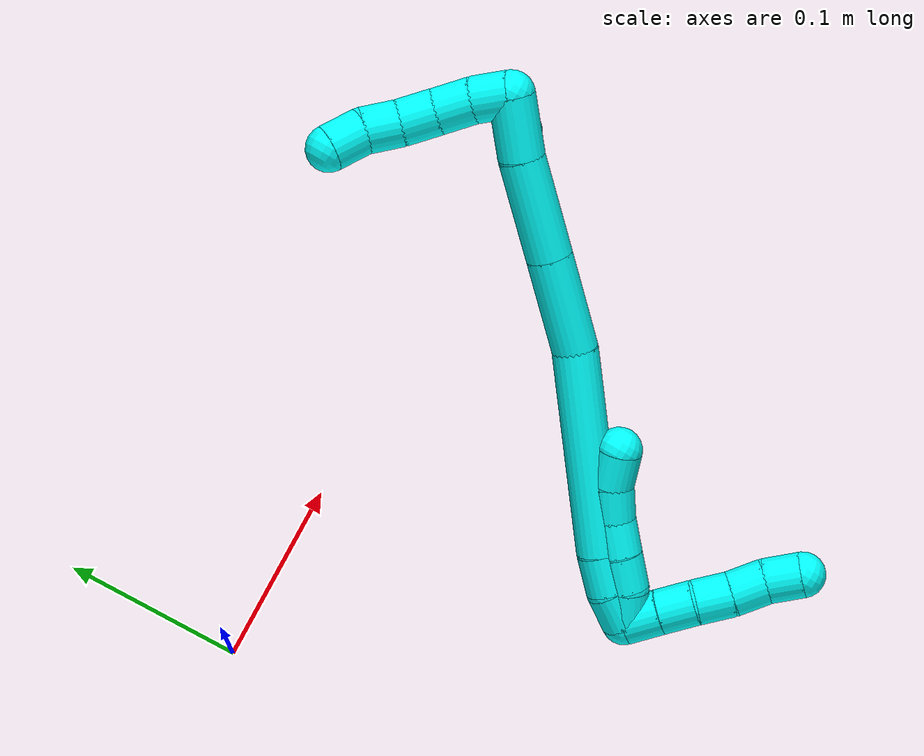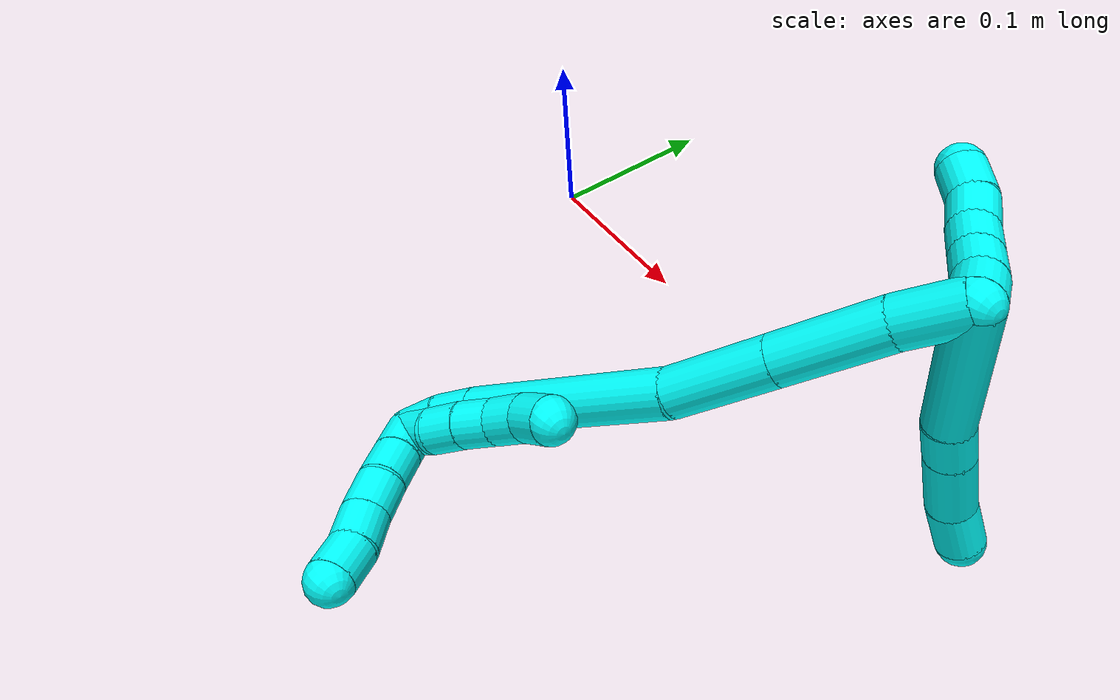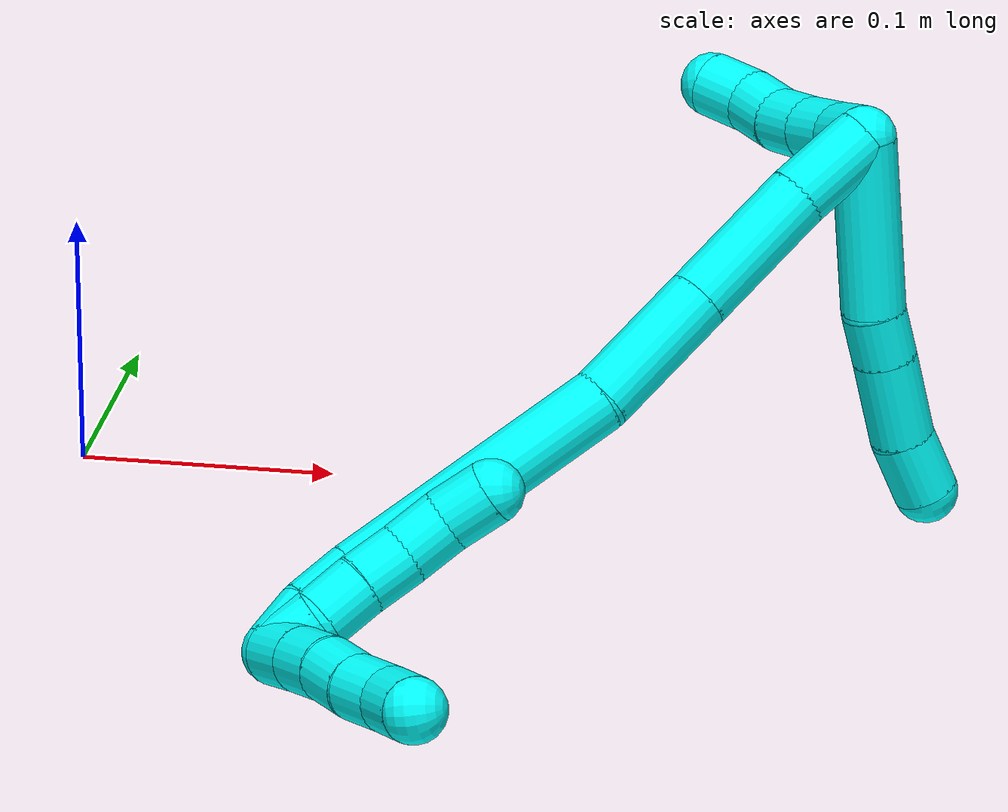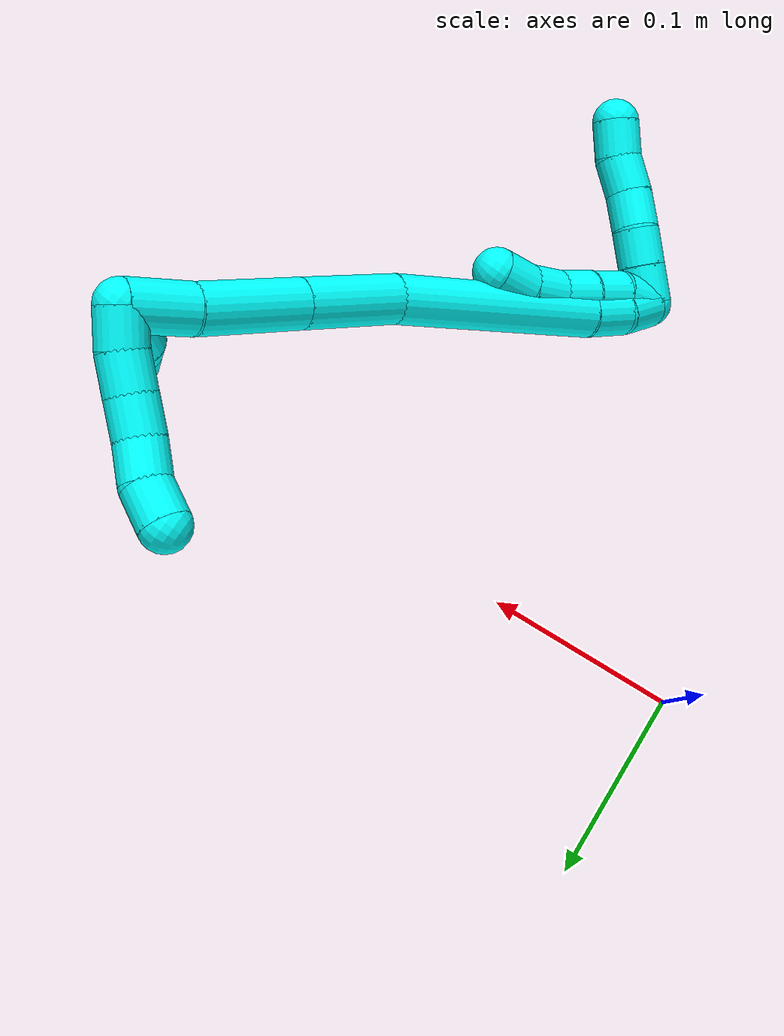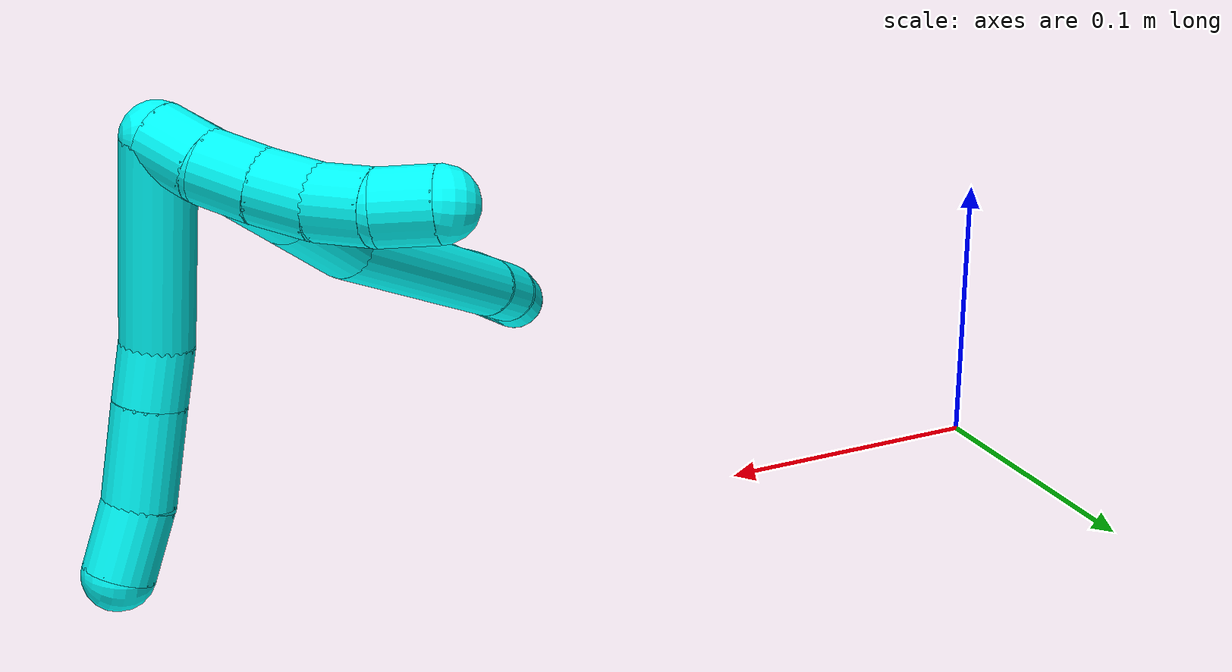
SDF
<sdf version="1.7">
 <world name="default">
  <model name="3">
   <static>0</static>
   <link name="3">
    <collision name="collision-cylinder-e_1_2_8">
     <pose>0.034491 -0.002476 -0.00389 2.57477 1.4379 2.49909</pose>
     <geometry><cylinder><radius>0.0125</radius><length>0.069595</length></cylinder></geometry>
     <surface>
      <friction><ode><mu>1.16</mu><mu2>1.16</mu2><slip1>0</slip1><slip2>0</slip2></ode></friction>
      <contact><ode><kp>1e+06</kp><kd>1</kd><max_vel>0</max_vel><min_depth>0.001</min_depth></ode></contact>
     </surface>
    </collision>
    <visual name="visual-cylinder-e_1_2_8">
     <pose>0.034491 -0.002476 -0.00389 2.57477 1.4379 2.49909</pose>
     <geometry><cylinder><radius>0.0125</radius><length>0.069595</length></cylinder></geometry>
     <material><ambient>0.003922 1 0.996078 1</ambient></material>
    </visual>
    <collision name="collision-cylinder-e_2_8_9">
     <pose>0.079144 -0.004456 -0.007507 -1.06845 1.51518 -1.02035</pose>
     <geometry><cylinder><radius>0.0125</radius><length>0.020356</length></cylinder></geometry>
     <surface>
      <friction><ode><mu>1.16</mu><mu2>1.16</mu2><slip1>0</slip1><slip2>0</slip2></ode></friction>
      <contact><ode><kp>1e+06</kp><kd>1</kd><max_vel>0</max_vel><min_depth>0.001</min_depth></ode></contact>
     </surface>
    </collision>
    <visual name="visual-cylinder-e_2_8_9">
     <pose>0.079144 -0.004456 -0.007507 -1.06845 1.51518 -1.02035</pose>
     <geometry><cylinder><radius>0.0125</radius><length>0.020356</length></cylinder></geometry>
     <material><ambient>0.003922 1 0.996078 1</ambient></material>
    </visual>
    <collision name="collision-cylinder-e_3_9_10">
     <pose>0.106634 -0.003153 -0.007024 -1.31496 1.52267 -1.26867</pose>
     <geometry><cylinder><radius>0.0125</radius><length>0.034696</length></cylinder></geometry>
     <surface>
      <friction><ode><mu>1.16</mu><mu2>1.16</mu2><slip1>0</slip1><slip2>0</slip2></ode></friction>
      <contact><ode><kp>1e+06</kp><kd>1</kd><max_vel>0</max_vel><min_depth>0.001</min_depth></ode></contact>
     </surface>
    </collision>
    <visual name="visual-cylinder-e_3_9_10">
     <pose>0.106634 -0.003153 -0.007024 -1.31496 1.52267 -1.26867</pose>
     <geometry><cylinder><radius>0.0125</radius><length>0.034696</length></cylinder></geometry>
     <material><ambient>0.003922 1 0.996078 1</ambient></material>
    </visual>
    <collision name="collision-cylinder-e_4_10_6">
     <pose>0.136384 -0.001292 -0.004516 -0.43012 1.37014 -0.353242</pose>
     <geometry><cylinder><radius>0.0125</radius><length>0.025353</length></cylinder></geometry>
     <surface>
      <friction><ode><mu>1.16</mu><mu2>1.16</mu2><slip1>0</slip1><slip2>0</slip2></ode></friction>
      <contact><ode><kp>1e+06</kp><kd>1</kd><max_vel>0</max_vel><min_depth>0.001</min_depth></ode></contact>
     </surface>
    </collision>
    <visual name="visual-cylinder-e_4_10_6">
     <pose>0.136384 -0.001292 -0.004516 -0.43012 1.37014 -0.353242</pose>
     <geometry><cylinder><radius>0.0125</radius><length>0.025353</length></cylinder></geometry>
     <material><ambient>0.003922 1 0.996078 1</ambient></material>
    </visual>
    <collision name="collision-cylinder-e_1_2_11">
     <pose>0.002101 0.007735 -0.00598 -2.22898 0.211638 -0.426206</pose>
     <geometry><cylinder><radius>0.0125</radius><length>0.02</length></cylinder></geometry>
     <surface>
      <friction><ode><mu>1.16</mu><mu2>1.16</mu2><slip1>0</slip1><slip2>0</slip2></ode></friction>
      <contact><ode><kp>1e+06</kp><kd>1</kd><max_vel>0</max_vel><min_depth>0.001</min_depth></ode></contact>
     </surface>
    </collision>
    <visual name="visual-cylinder-e_1_2_11">
     <pose>0.002101 0.007735 -0.00598 -2.22898 0.211638 -0.426206</pose>
     <geometry><cylinder><radius>0.0125</radius><length>0.02</length></cylinder></geometry>
     <material><ambient>0.003922 1 0.996078 1</ambient></material>
    </visual>
    <collision name="collision-cylinder-e_2_11_12">
     <pose>0.005212 0.022315 -0.019179 -2.38265 0.101286 -0.252839</pose>
     <geometry><cylinder><radius>0.0125</radius><length>0.02</length></cylinder></geometry>
     <surface>
      <friction><ode><mu>1.16</mu><mu2>1.16</mu2><slip1>0</slip1><slip2>0</slip2></ode></friction>
      <contact><ode><kp>1e+06</kp><kd>1</kd><max_vel>0</max_vel><min_depth>0.001</min_depth></ode></contact>
     </surface>
    </collision>
    <visual name="visual-cylinder-e_2_11_12">
     <pose>0.005212 0.022315 -0.019179 -2.38265 0.101286 -0.252839</pose>
     <geometry><cylinder><radius>0.0125</radius><length>0.02</length></cylinder></geometry>
     <material><ambient>0.003922 1 0.996078 1</ambient></material>
    </visual>
    <collision name="collision-cylinder-e_3_12_13">
     <pose>0.006553 0.036007 -0.03368 -2.38705 0.032986 -0.083203</pose>
     <geometry><cylinder><radius>0.0125</radius><length>0.02</length></cylinder></geometry>
     <surface>
      <friction><ode><mu>1.16</mu><mu2>1.16</mu2><slip1>0</slip1><slip2>0</slip2></ode></friction>
      <contact><ode><kp>1e+06</kp><kd>1</kd><max_vel>0</max_vel><min_depth>0.001</min_depth></ode></contact>
     </surface>
    </collision>
    <visual name="visual-cylinder-e_3_12_13">
     <pose>0.006553 0.036007 -0.03368 -2.38705 0.032986 -0.083203</pose>
     <geometry><cylinder><radius>0.0125</radius><length>0.02</length></cylinder></geometry>
     <material><ambient>0.003922 1 0.996078 1</ambient></material>
    </visual>
    <collision name="collision-cylinder-e_4_13_14">
     <pose>0.005402 0.050112 -0.047678 -2.31747 -0.148672 0.337533</pose>
     <geometry><cylinder><radius>0.0125</radius><length>0.02</length></cylinder></geometry>
     <surface>
      <friction><ode><mu>1.16</mu><mu2>1.16</mu2><slip1>0</slip1><slip2>0</slip2></ode></friction>
      <contact><ode><kp>1e+06</kp><kd>1</kd><max_vel>0</max_vel><min_depth>0.001</min_depth></ode></contact>
     </surface>
    </collision>
    <visual name="visual-cylinder-e_4_13_14">
     <pose>0.005402 0.050112 -0.047678 -2.31747 -0.148672 0.337533</pose>
     <geometry><cylinder><radius>0.0125</radius><length>0.02</length></cylinder></geometry>
     <material><ambient>0.003922 1 0.996078 1</ambient></material>
    </visual>
    <collision name="collision-cylinder-e_5_14_5">
     <pose>0.00153 0.062334 -0.062741 -2.60502 -0.241379 0.83094</pose>
     <geometry><cylinder><radius>0.0125</radius><length>0.02</length></cylinder></geometry>
     <surface>
      <friction><ode><mu>1.16</mu><mu2>1.16</mu2><slip1>0</slip1><slip2>0</slip2></ode></friction>
      <contact><ode><kp>1e+06</kp><kd>1</kd><max_vel>0</max_vel><min_depth>0.001</min_depth></ode></contact>
     </surface>
    </collision>
    <visual name="visual-cylinder-e_5_14_5">
     <pose>0.00153 0.062334 -0.062741 -2.60502 -0.241379 0.83094</pose>
     <geometry><cylinder><radius>0.0125</radius><length>0.02</length></cylinder></geometry>
     <material><ambient>0.003922 1 0.996078 1</ambient></material>
    </visual>
    <collision name="collision-cylinder-e_1_2_15">
     <pose>0.006371 -0.009939 -0.012403 2.46602 0.381236 1.00469</pose>
     <geometry><cylinder><radius>0.0125</radius><length>0.034247</length></cylinder></geometry>
     <surface>
      <friction><ode><mu>1.16</mu><mu2>1.16</mu2><slip1>0</slip1><slip2>0</slip2></ode></friction>
      <contact><ode><kp>1e+06</kp><kd>1</kd><max_vel>0</max_vel><min_depth>0.001</min_depth></ode></contact>
     </surface>
    </collision>
    <visual name="visual-cylinder-e_1_2_15">
     <pose>0.006371 -0.009939 -0.012403 2.46602 0.381236 1.00469</pose>
     <geometry><cylinder><radius>0.0125</radius><length>0.034247</length></cylinder></geometry>
     <material><ambient>0.003922 1 0.996078 1</ambient></material>
    </visual>
    <collision name="collision-cylinder-e_2_15_16">
     <pose>0.023689 -0.03821 -0.042802 2.34697 0.402833 0.905723</pose>
     <geometry><cylinder><radius>0.0125</radius><length>0.055849</length></cylinder></geometry>
     <surface>
      <friction><ode><mu>1.16</mu><mu2>1.16</mu2><slip1>0</slip1><slip2>0</slip2></ode></friction>
      <contact><ode><kp>1e+06</kp><kd>1</kd><max_vel>0</max_vel><min_depth>0.001</min_depth></ode></contact>
     </surface>
    </collision>
    <visual name="visual-cylinder-e_2_15_16">
     <pose>0.023689 -0.03821 -0.042802 2.34697 0.402833 0.905723</pose>
     <geometry><cylinder><radius>0.0125</radius><length>0.055849</length></cylinder></geometry>
     <material><ambient>0.003922 1 0.996078 1</ambient></material>
    </visual>
    <collision name="collision-cylinder-e_3_16_17">
     <pose>0.04521 -0.074183 -0.078203 2.34943 0.403298 0.909371</pose>
     <geometry><cylinder><radius>0.0125</radius><length>0.053884</length></cylinder></geometry>
     <surface>
      <friction><ode><mu>1.16</mu><mu2>1.16</mu2><slip1>0</slip1><slip2>0</slip2></ode></friction>
      <contact><ode><kp>1e+06</kp><kd>1</kd><max_vel>0</max_vel><min_depth>0.001</min_depth></ode></contact>
     </surface>
    </collision>
    <visual name="visual-cylinder-e_3_16_17">
     <pose>0.04521 -0.074183 -0.078203 2.34943 0.403298 0.909371</pose>
     <geometry><cylinder><radius>0.0125</radius><length>0.053884</length></cylinder></geometry>
     <material><ambient>0.003922 1 0.996078 1</ambient></material>
    </visual>
    <collision name="collision-cylinder-e_4_17_18">
     <pose>0.071509 -0.124378 -0.139246 2.50068 0.281175 0.806112</pose>
     <geometry><cylinder><radius>0.0125</radius><length>0.11334</length></cylinder></geometry>
     <surface>
      <friction><ode><mu>1.16</mu><mu2>1.16</mu2><slip1>0</slip1><slip2>0</slip2></ode></friction>
      <contact><ode><kp>1e+06</kp><kd>1</kd><max_vel>0</max_vel><min_depth>0.001</min_depth></ode></contact>
     </surface>
    </collision>
    <visual name="visual-cylinder-e_4_17_18">
     <pose>0.071509 -0.124378 -0.139246 2.50068 0.281175 0.806112</pose>
     <geometry><cylinder><radius>0.0125</radius><length>0.11334</length></cylinder></geometry>
     <material><ambient>0.003922 1 0.996078 1</ambient></material>
    </visual>
    <collision name="collision-cylinder-e_5_18_19">
     <pose>0.090447 -0.164274 -0.190584 2.37984 0.293361 0.706926</pose>
     <geometry><cylinder><radius>0.0125</radius><length>0.022225</length></cylinder></geometry>
     <surface>
      <friction><ode><mu>1.16</mu><mu2>1.16</mu2><slip1>0</slip1><slip2>0</slip2></ode></friction>
      <contact><ode><kp>1e+06</kp><kd>1</kd><max_vel>0</max_vel><min_depth>0.001</min_depth></ode></contact>
     </surface>
    </collision>
    <visual name="visual-cylinder-e_5_18_19">
     <pose>0.090447 -0.164274 -0.190584 2.37984 0.293361 0.706926</pose>
     <geometry><cylinder><radius>0.0125</radius><length>0.022225</length></cylinder></geometry>
     <material><ambient>0.003922 1 0.996078 1</ambient></material>
    </visual>
    <collision name="collision-cylinder-e_6_19_1">
     <pose>0.09742 -0.179444 -0.203684 2.17477 0.376453 0.696155</pose>
     <geometry><cylinder><radius>0.0125</radius><length>0.020455</length></cylinder></geometry>
     <surface>
      <friction><ode><mu>1.16</mu><mu2>1.16</mu2><slip1>0</slip1><slip2>0</slip2></ode></friction>
      <contact><ode><kp>1e+06</kp><kd>1</kd><max_vel>0</max_vel><min_depth>0.001</min_depth></ode></contact>
     </surface>
    </collision>
    <visual name="visual-cylinder-e_6_19_1">
     <pose>0.09742 -0.179444 -0.203684 2.17477 0.376453 0.696155</pose>
     <geometry><cylinder><radius>0.0125</radius><length>0.020455</length></cylinder></geometry>
     <material><ambient>0.003922 1 0.996078 1</ambient></material>
    </visual>
    <collision name="collision-cylinder-e_1_1_20">
     <pose>0.099797 -0.194117 -0.201927 0.762959 -0.138735 -0.055726</pose>
     <geometry><cylinder><radius>0.0125</radius><length>0.02</length></cylinder></geometry>
     <surface>
      <friction><ode><mu>1.16</mu><mu2>1.16</mu2><slip1>0</slip1><slip2>0</slip2></ode></friction>
      <contact><ode><kp>1e+06</kp><kd>1</kd><max_vel>0</max_vel><min_depth>0.001</min_depth></ode></contact>
     </surface>
    </collision>
    <visual name="visual-cylinder-e_1_1_20">
     <pose>0.099797 -0.194117 -0.201927 0.762959 -0.138735 -0.055726</pose>
     <geometry><cylinder><radius>0.0125</radius><length>0.02</length></cylinder></geometry>
     <material><ambient>0.003922 1 0.996078 1</ambient></material>
    </visual>
    <collision name="collision-cylinder-e_2_20_21">
     <pose>0.097329 -0.207925 -0.187674 0.776145 -0.108697 -0.044472</pose>
     <geometry><cylinder><radius>0.0125</radius><length>0.02</length></cylinder></geometry>
     <surface>
      <friction><ode><mu>1.16</mu><mu2>1.16</mu2><slip1>0</slip1><slip2>0</slip2></ode></friction>
      <contact><ode><kp>1e+06</kp><kd>1</kd><max_vel>0</max_vel><min_depth>0.001</min_depth></ode></contact>
     </surface>
    </collision>
    <visual name="visual-cylinder-e_2_20_21">
     <pose>0.097329 -0.207925 -0.187674 0.776145 -0.108697 -0.044472</pose>
     <geometry><cylinder><radius>0.0125</radius><length>0.02</length></cylinder></geometry>
     <material><ambient>0.003922 1 0.996078 1</ambient></material>
    </visual>
    <collision name="collision-cylinder-e_3_21_22">
     <pose>0.096574 -0.222163 -0.173725 0.814994 0.032954 0.014226</pose>
     <geometry><cylinder><radius>0.0125</radius><length>0.02</length></cylinder></geometry>
     <surface>
      <friction><ode><mu>1.16</mu><mu2>1.16</mu2><slip1>0</slip1><slip2>0</slip2></ode></friction>
      <contact><ode><kp>1e+06</kp><kd>1</kd><max_vel>0</max_vel><min_depth>0.001</min_depth></ode></contact>
     </surface>
    </collision>
    <visual name="visual-cylinder-e_3_21_22">
     <pose>0.096574 -0.222163 -0.173725 0.814994 0.032954 0.014226</pose>
     <geometry><cylinder><radius>0.0125</radius><length>0.02</length></cylinder></geometry>
     <material><ambient>0.003922 1 0.996078 1</ambient></material>
    </visual>
    <collision name="collision-cylinder-e_4_22_23">
     <pose>0.096822 -0.235758 -0.159122 0.684396 -0.008176 -0.002913</pose>
     <geometry><cylinder><radius>0.0125</radius><length>0.02</length></cylinder></geometry>
     <surface>
      <friction><ode><mu>1.16</mu><mu2>1.16</mu2><slip1>0</slip1><slip2>0</slip2></ode></friction>
      <contact><ode><kp>1e+06</kp><kd>1</kd><max_vel>0</max_vel><min_depth>0.001</min_depth></ode></contact>
     </surface>
    </collision>
    <visual name="visual-cylinder-e_4_22_23">
     <pose>0.096822 -0.235758 -0.159122 0.684396 -0.008176 -0.002913</pose>
     <geometry><cylinder><radius>0.0125</radius><length>0.02</length></cylinder></geometry>
     <material><ambient>0.003922 1 0.996078 1</ambient></material>
    </visual>
    <collision name="collision-cylinder-e_5_23_4">
     <pose>0.095378 -0.249618 -0.144947 0.864762 -0.136592 -0.063115</pose>
     <geometry><cylinder><radius>0.0125</radius><length>0.02</length></cylinder></geometry>
     <surface>
      <friction><ode><mu>1.16</mu><mu2>1.16</mu2><slip1>0</slip1><slip2>0</slip2></ode></friction>
      <contact><ode><kp>1e+06</kp><kd>1</kd><max_vel>0</max_vel><min_depth>0.001</min_depth></ode></contact>
     </surface>
    </collision>
    <visual name="visual-cylinder-e_5_23_4">
     <pose>0.095378 -0.249618 -0.144947 0.864762 -0.136592 -0.063115</pose>
     <geometry><cylinder><radius>0.0125</radius><length>0.02</length></cylinder></geometry>
     <material><ambient>0.003922 1 0.996078 1</ambient></material>
    </visual>
    <collision name="collision-cylinder-e_1_1_24">
     <pose>0.097365 -0.183156 -0.200809 -0.461565 -0.391466 0.093108</pose>
     <geometry><cylinder><radius>0.0125</radius><length>0.02</length></cylinder></geometry>
     <surface>
      <friction><ode><mu>1.16</mu><mu2>1.16</mu2><slip1>0</slip1><slip2>0</slip2></ode></friction>
      <contact><ode><kp>1e+06</kp><kd>1</kd><max_vel>0</max_vel><min_depth>0.001</min_depth></ode></contact>
     </surface>
    </collision>
    <visual name="visual-cylinder-e_1_1_24">
     <pose>0.097365 -0.183156 -0.200809 -0.461565 -0.391466 0.093108</pose>
     <geometry><cylinder><radius>0.0125</radius><length>0.02</length></cylinder></geometry>
     <material><ambient>0.003922 1 0.996078 1</ambient></material>
    </visual>
    <collision name="collision-cylinder-e_2_24_25">
     <pose>0.090374 -0.172786 -0.185405 -0.7202 -0.323138 0.122583</pose>
     <geometry><cylinder><radius>0.0125</radius><length>0.02</length></cylinder></geometry>
     <surface>
      <friction><ode><mu>1.16</mu><mu2>1.16</mu2><slip1>0</slip1><slip2>0</slip2></ode></friction>
      <contact><ode><kp>1e+06</kp><kd>1</kd><max_vel>0</max_vel><min_depth>0.001</min_depth></ode></contact>
     </surface>
    </collision>
    <visual name="visual-cylinder-e_2_24_25">
     <pose>0.090374 -0.172786 -0.185405 -0.7202 -0.323138 0.122583</pose>
     <geometry><cylinder><radius>0.0125</radius><length>0.02</length></cylinder></geometry>
     <material><ambient>0.003922 1 0.996078 1</ambient></material>
    </visual>
    <collision name="collision-cylinder-e_3_25_26">
     <pose>0.08471 -0.160239 -0.170914 -0.707141 -0.251525 0.093258</pose>
     <geometry><cylinder><radius>0.0125</radius><length>0.02</length></cylinder></geometry>
     <surface>
      <friction><ode><mu>1.16</mu><mu2>1.16</mu2><slip1>0</slip1><slip2>0</slip2></ode></friction>
      <contact><ode><kp>1e+06</kp><kd>1</kd><max_vel>0</max_vel><min_depth>0.001</min_depth></ode></contact>
     </surface>
    </collision>
    <visual name="visual-cylinder-e_3_25_26">
     <pose>0.08471 -0.160239 -0.170914 -0.707141 -0.251525 0.093258</pose>
     <geometry><cylinder><radius>0.0125</radius><length>0.02</length></cylinder></geometry>
     <material><ambient>0.003922 1 0.996078 1</ambient></material>
    </visual>
    <collision name="collision-cylinder-e_4_26_27">
     <pose>0.078587 -0.148903 -0.155718 -0.572105 -0.37191 0.110551</pose>
     <geometry><cylinder><radius>0.0125</radius><length>0.02</length></cylinder></geometry>
     <surface>
      <friction><ode><mu>1.16</mu><mu2>1.16</mu2><slip1>0</slip1><slip2>0</slip2></ode></friction>
      <contact><ode><kp>1e+06</kp><kd>1</kd><max_vel>0</max_vel><min_depth>0.001</min_depth></ode></contact>
     </surface>
    </collision>
    <visual name="visual-cylinder-e_4_26_27">
     <pose>0.078587 -0.148903 -0.155718 -0.572105 -0.37191 0.110551</pose>
     <geometry><cylinder><radius>0.0125</radius><length>0.02</length></cylinder></geometry>
     <material><ambient>0.003922 1 0.996078 1</ambient></material>
    </visual>
    <collision name="collision-cylinder-e_5_27_3">
     <pose>0.071141 -0.141275 -0.139009 -0.283291 -0.391059 0.056472</pose>
     <geometry><cylinder><radius>0.0125</radius><length>0.02</length></cylinder></geometry>
     <surface>
      <friction><ode><mu>1.16</mu><mu2>1.16</mu2><slip1>0</slip1><slip2>0</slip2></ode></friction>
      <contact><ode><kp>1e+06</kp><kd>1</kd><max_vel>0</max_vel><min_depth>0.001</min_depth></ode></contact>
     </surface>
    </collision>
    <visual name="visual-cylinder-e_5_27_3">
     <pose>0.071141 -0.141275 -0.139009 -0.283291 -0.391059 0.056472</pose>
     <geometry><cylinder><radius>0.0125</radius><length>0.02</length></cylinder></geometry>
     <material><ambient>0.003922 1 0.996078 1</ambient></material>
    </visual>
    <collision name="collision-sphere-3">
     <pose>0.067329 -0.138691 -0.130132 0 -0 0</pose>
     <geometry><sphere><radius>0.0125</radius></sphere></geometry>
     <surface>
      <friction><ode><mu>1.16</mu><mu2>1.16</mu2><slip1>0</slip1><slip2>0</slip2></ode></friction>
      <contact><ode><kp>1e+06</kp><kd>1</kd><max_vel>0</max_vel><min_depth>0.001</min_depth></ode></contact>
     </surface>
    </collision>
    <visual name="visual-sphere-3">
     <pose>0.067329 -0.138691 -0.130132 0 -0 0</pose>
     <geometry><sphere><radius>0.0125</radius></sphere></geometry>
     <material><ambient>0.003922 1 0.996078 1</ambient></material>
    </visual>
    <collision name="collision-sphere-27">
     <pose>0.074953 -0.143859 -0.147886 0 -0 0</pose>
     <geometry><sphere><radius>0.0125</radius></sphere></geometry>
     <surface>
      <friction><ode><mu>1.16</mu><mu2>1.16</mu2><slip1>0</slip1><slip2>0</slip2></ode></friction>
      <contact><ode><kp>1e+06</kp><kd>1</kd><max_vel>0</max_vel><min_depth>0.001</min_depth></ode></contact>
     </surface>
    </collision>
    <visual name="visual-sphere-27">
     <pose>0.074953 -0.143859 -0.147886 0 -0 0</pose>
     <geometry><sphere><radius>0.0125</radius></sphere></geometry>
     <material><ambient>0.003922 1 0.996078 1</ambient></material>
    </visual>
    <collision name="collision-sphere-26">
     <pose>0.082221 -0.153947 -0.163551 0 -0 0</pose>
     <geometry><sphere><radius>0.0125</radius></sphere></geometry>
     <surface>
      <friction><ode><mu>1.16</mu><mu2>1.16</mu2><slip1>0</slip1><slip2>0</slip2></ode></friction>
      <contact><ode><kp>1e+06</kp><kd>1</kd><max_vel>0</max_vel><min_depth>0.001</min_depth></ode></contact>
     </surface>
    </collision>
    <visual name="visual-sphere-26">
     <pose>0.082221 -0.153947 -0.163551 0 -0 0</pose>
     <geometry><sphere><radius>0.0125</radius></sphere></geometry>
     <material><ambient>0.003922 1 0.996078 1</ambient></material>
    </visual>
    <collision name="collision-sphere-25">
     <pose>0.087198 -0.166532 -0.178277 0 -0 0</pose>
     <geometry><sphere><radius>0.0125</radius></sphere></geometry>
     <surface>
      <friction><ode><mu>1.16</mu><mu2>1.16</mu2><slip1>0</slip1><slip2>0</slip2></ode></friction>
      <contact><ode><kp>1e+06</kp><kd>1</kd><max_vel>0</max_vel><min_depth>0.001</min_depth></ode></contact>
     </surface>
    </collision>
    <visual name="visual-sphere-25">
     <pose>0.087198 -0.166532 -0.178277 0 -0 0</pose>
     <geometry><sphere><radius>0.0125</radius></sphere></geometry>
     <material><ambient>0.003922 1 0.996078 1</ambient></material>
    </visual>
    <collision name="collision-sphere-24">
     <pose>0.093549 -0.17904 -0.192533 0 -0 0</pose>
     <geometry><sphere><radius>0.0125</radius></sphere></geometry>
     <surface>
      <friction><ode><mu>1.16</mu><mu2>1.16</mu2><slip1>0</slip1><slip2>0</slip2></ode></friction>
      <contact><ode><kp>1e+06</kp><kd>1</kd><max_vel>0</max_vel><min_depth>0.001</min_depth></ode></contact>
     </surface>
    </collision>
    <visual name="visual-sphere-24">
     <pose>0.093549 -0.17904 -0.192533 0 -0 0</pose>
     <geometry><sphere><radius>0.0125</radius></sphere></geometry>
     <material><ambient>0.003922 1 0.996078 1</ambient></material>
    </visual>
    <collision name="collision-sphere-4">
     <pose>0.094017 -0.257157 -0.138519 0 -0 0</pose>
     <geometry><sphere><radius>0.0125</radius></sphere></geometry>
     <surface>
      <friction><ode><mu>1.16</mu><mu2>1.16</mu2><slip1>0</slip1><slip2>0</slip2></ode></friction>
      <contact><ode><kp>1e+06</kp><kd>1</kd><max_vel>0</max_vel><min_depth>0.001</min_depth></ode></contact>
     </surface>
    </collision>
    <visual name="visual-sphere-4">
     <pose>0.094017 -0.257157 -0.138519 0 -0 0</pose>
     <geometry><sphere><radius>0.0125</radius></sphere></geometry>
     <material><ambient>0.003922 1 0.996078 1</ambient></material>
    </visual>
    <collision name="collision-sphere-23">
     <pose>0.09674 -0.24208 -0.151375 0 -0 0</pose>
     <geometry><sphere><radius>0.0125</radius></sphere></geometry>
     <surface>
      <friction><ode><mu>1.16</mu><mu2>1.16</mu2><slip1>0</slip1><slip2>0</slip2></ode></friction>
      <contact><ode><kp>1e+06</kp><kd>1</kd><max_vel>0</max_vel><min_depth>0.001</min_depth></ode></contact>
     </surface>
    </collision>
    <visual name="visual-sphere-23">
     <pose>0.09674 -0.24208 -0.151375 0 -0 0</pose>
     <geometry><sphere><radius>0.0125</radius></sphere></geometry>
     <material><ambient>0.003922 1 0.996078 1</ambient></material>
    </visual>
    <collision name="collision-sphere-22">
     <pose>0.096904 -0.229436 -0.16687 0 -0 0</pose>
     <geometry><sphere><radius>0.0125</radius></sphere></geometry>
     <surface>
      <friction><ode><mu>1.16</mu><mu2>1.16</mu2><slip1>0</slip1><slip2>0</slip2></ode></friction>
      <contact><ode><kp>1e+06</kp><kd>1</kd><max_vel>0</max_vel><min_depth>0.001</min_depth></ode></contact>
     </surface>
    </collision>
    <visual name="visual-sphere-22">
     <pose>0.096904 -0.229436 -0.16687 0 -0 0</pose>
     <geometry><sphere><radius>0.0125</radius></sphere></geometry>
     <material><ambient>0.003922 1 0.996078 1</ambient></material>
    </visual>
    <collision name="collision-sphere-21">
     <pose>0.096245 -0.214889 -0.18058 0 -0 0</pose>
     <geometry><sphere><radius>0.0125</radius></sphere></geometry>
     <surface>
      <friction><ode><mu>1.16</mu><mu2>1.16</mu2><slip1>0</slip1><slip2>0</slip2></ode></friction>
      <contact><ode><kp>1e+06</kp><kd>1</kd><max_vel>0</max_vel><min_depth>0.001</min_depth></ode></contact>
     </surface>
    </collision>
    <visual name="visual-sphere-21">
     <pose>0.096245 -0.214889 -0.18058 0 -0 0</pose>
     <geometry><sphere><radius>0.0125</radius></sphere></geometry>
     <material><ambient>0.003922 1 0.996078 1</ambient></material>
    </visual>
    <collision name="collision-sphere-20">
     <pose>0.098414 -0.200961 -0.194768 0 -0 0</pose>
     <geometry><sphere><radius>0.0125</radius></sphere></geometry>
     <surface>
      <friction><ode><mu>1.16</mu><mu2>1.16</mu2><slip1>0</slip1><slip2>0</slip2></ode></friction>
      <contact><ode><kp>1e+06</kp><kd>1</kd><max_vel>0</max_vel><min_depth>0.001</min_depth></ode></contact>
     </surface>
    </collision>
    <visual name="visual-sphere-20">
     <pose>0.098414 -0.200961 -0.194768 0 -0 0</pose>
     <geometry><sphere><radius>0.0125</radius></sphere></geometry>
     <material><ambient>0.003922 1 0.996078 1</ambient></material>
    </visual>
    <collision name="collision-sphere-11">
     <pose>0.004201 0.015469 -0.011961 0 -0 0</pose>
     <geometry><sphere><radius>0.0125</radius></sphere></geometry>
     <surface>
      <friction><ode><mu>1.16</mu><mu2>1.16</mu2><slip1>0</slip1><slip2>0</slip2></ode></friction>
      <contact><ode><kp>1e+06</kp><kd>1</kd><max_vel>0</max_vel><min_depth>0.001</min_depth></ode></contact>
     </surface>
    </collision>
    <visual name="visual-sphere-11">
     <pose>0.004201 0.015469 -0.011961 0 -0 0</pose>
     <geometry><sphere><radius>0.0125</radius></sphere></geometry>
     <material><ambient>0.003922 1 0.996078 1</ambient></material>
    </visual>
    <collision name="collision-sphere-6">
     <pose>0.148806 -0.000238 -0.002219 0 -0 0</pose>
     <geometry><sphere><radius>0.0125</radius></sphere></geometry>
     <surface>
      <friction><ode><mu>1.16</mu><mu2>1.16</mu2><slip1>0</slip1><slip2>0</slip2></ode></friction>
      <contact><ode><kp>1e+06</kp><kd>1</kd><max_vel>0</max_vel><min_depth>0.001</min_depth></ode></contact>
     </surface>
    </collision>
    <visual name="visual-sphere-6">
     <pose>0.148806 -0.000238 -0.002219 0 -0 0</pose>
     <geometry><sphere><radius>0.0125</radius></sphere></geometry>
     <material><ambient>0.003922 1 0.996078 1</ambient></material>
    </visual>
    <collision name="collision-sphere-10">
     <pose>0.123961 -0.002345 -0.006812 0 -0 0</pose>
     <geometry><sphere><radius>0.0125</radius></sphere></geometry>
     <surface>
      <friction><ode><mu>1.16</mu><mu2>1.16</mu2><slip1>0</slip1><slip2>0</slip2></ode></friction>
      <contact><ode><kp>1e+06</kp><kd>1</kd><max_vel>0</max_vel><min_depth>0.001</min_depth></ode></contact>
     </surface>
    </collision>
    <visual name="visual-sphere-10">
     <pose>0.123961 -0.002345 -0.006812 0 -0 0</pose>
     <geometry><sphere><radius>0.0125</radius></sphere></geometry>
     <material><ambient>0.003922 1 0.996078 1</ambient></material>
    </visual>
    <collision name="collision-sphere-9">
     <pose>0.089306 -0.00396 -0.007235 0 -0 0</pose>
     <geometry><sphere><radius>0.0125</radius></sphere></geometry>
     <surface>
      <friction><ode><mu>1.16</mu><mu2>1.16</mu2><slip1>0</slip1><slip2>0</slip2></ode></friction>
      <contact><ode><kp>1e+06</kp><kd>1</kd><max_vel>0</max_vel><min_depth>0.001</min_depth></ode></contact>
     </surface>
    </collision>
    <visual name="visual-sphere-9">
     <pose>0.089306 -0.00396 -0.007235 0 -0 0</pose>
     <geometry><sphere><radius>0.0125</radius></sphere></geometry>
     <material><ambient>0.003922 1 0.996078 1</ambient></material>
    </visual>
    <collision name="collision-sphere-2">
     <geometry><sphere><radius>0.0125</radius></sphere></geometry>
     <surface>
      <friction><ode><mu>1.16</mu><mu2>1.16</mu2><slip1>0</slip1><slip2>0</slip2></ode></friction>
      <contact><ode><kp>1e+06</kp><kd>1</kd><max_vel>0</max_vel><min_depth>0.001</min_depth></ode></contact>
     </surface>
    </collision>
    <visual name="visual-sphere-2">
     <geometry><sphere><radius>0.0125</radius></sphere></geometry>
     <material><ambient>0.003922 1 0.996078 1</ambient></material>
    </visual>
    <collision name="collision-sphere-19">
     <pose>0.09366 -0.171616 -0.198282 0 -0 0</pose>
     <geometry><sphere><radius>0.0125</radius></sphere></geometry>
     <surface>
      <friction><ode><mu>1.16</mu><mu2>1.16</mu2><slip1>0</slip1><slip2>0</slip2></ode></friction>
      <contact><ode><kp>1e+06</kp><kd>1</kd><max_vel>0</max_vel><min_depth>0.001</min_depth></ode></contact>
     </surface>
    </collision>
    <visual name="visual-sphere-19">
     <pose>0.09366 -0.171616 -0.198282 0 -0 0</pose>
     <geometry><sphere><radius>0.0125</radius></sphere></geometry>
     <material><ambient>0.003922 1 0.996078 1</ambient></material>
    </visual>
    <collision name="collision-sphere-8">
     <pose>0.068982 -0.004952 -0.00778 0 -0 0</pose>
     <geometry><sphere><radius>0.0125</radius></sphere></geometry>
     <surface>
      <friction><ode><mu>1.16</mu><mu2>1.16</mu2><slip1>0</slip1><slip2>0</slip2></ode></friction>
      <contact><ode><kp>1e+06</kp><kd>1</kd><max_vel>0</max_vel><min_depth>0.001</min_depth></ode></contact>
     </surface>
    </collision>
    <visual name="visual-sphere-8">
     <pose>0.068982 -0.004952 -0.00778 0 -0 0</pose>
     <geometry><sphere><radius>0.0125</radius></sphere></geometry>
     <material><ambient>0.003922 1 0.996078 1</ambient></material>
    </visual>
    <collision name="collision-sphere-12">
     <pose>0.006223 0.029162 -0.026398 0 -0 0</pose>
     <geometry><sphere><radius>0.0125</radius></sphere></geometry>
     <surface>
      <friction><ode><mu>1.16</mu><mu2>1.16</mu2><slip1>0</slip1><slip2>0</slip2></ode></friction>
      <contact><ode><kp>1e+06</kp><kd>1</kd><max_vel>0</max_vel><min_depth>0.001</min_depth></ode></contact>
     </surface>
    </collision>
    <visual name="visual-sphere-12">
     <pose>0.006223 0.029162 -0.026398 0 -0 0</pose>
     <geometry><sphere><radius>0.0125</radius></sphere></geometry>
     <material><ambient>0.003922 1 0.996078 1</ambient></material>
    </visual>
    <collision name="collision-sphere-13">
     <pose>0.006883 0.042853 -0.040961 0 -0 0</pose>
     <geometry><sphere><radius>0.0125</radius></sphere></geometry>
     <surface>
      <friction><ode><mu>1.16</mu><mu2>1.16</mu2><slip1>0</slip1><slip2>0</slip2></ode></friction>
      <contact><ode><kp>1e+06</kp><kd>1</kd><max_vel>0</max_vel><min_depth>0.001</min_depth></ode></contact>
     </surface>
    </collision>
    <visual name="visual-sphere-13">
     <pose>0.006883 0.042853 -0.040961 0 -0 0</pose>
     <geometry><sphere><radius>0.0125</radius></sphere></geometry>
     <material><ambient>0.003922 1 0.996078 1</ambient></material>
    </visual>
    <collision name="collision-sphere-14">
     <pose>0.003921 0.05737 -0.054396 0 -0 0</pose>
     <geometry><sphere><radius>0.0125</radius></sphere></geometry>
     <surface>
      <friction><ode><mu>1.16</mu><mu2>1.16</mu2><slip1>0</slip1><slip2>0</slip2></ode></friction>
      <contact><ode><kp>1e+06</kp><kd>1</kd><max_vel>0</max_vel><min_depth>0.001</min_depth></ode></contact>
     </surface>
    </collision>
    <visual name="visual-sphere-14">
     <pose>0.003921 0.05737 -0.054396 0 -0 0</pose>
     <geometry><sphere><radius>0.0125</radius></sphere></geometry>
     <material><ambient>0.003922 1 0.996078 1</ambient></material>
    </visual>
    <collision name="collision-sphere-5">
     <pose>-0.00086 0.067298 -0.071087 0 -0 0</pose>
     <geometry><sphere><radius>0.0125</radius></sphere></geometry>
     <surface>
      <friction><ode><mu>1.16</mu><mu2>1.16</mu2><slip1>0</slip1><slip2>0</slip2></ode></friction>
      <contact><ode><kp>1e+06</kp><kd>1</kd><max_vel>0</max_vel><min_depth>0.001</min_depth></ode></contact>
     </surface>
    </collision>
    <visual name="visual-sphere-5">
     <pose>-0.00086 0.067298 -0.071087 0 -0 0</pose>
     <geometry><sphere><radius>0.0125</radius></sphere></geometry>
     <material><ambient>0.003922 1 0.996078 1</ambient></material>
    </visual>
    <collision name="collision-sphere-15">
     <pose>0.012742 -0.019879 -0.024806 0 -0 0</pose>
     <geometry><sphere><radius>0.0125</radius></sphere></geometry>
     <surface>
      <friction><ode><mu>1.16</mu><mu2>1.16</mu2><slip1>0</slip1><slip2>0</slip2></ode></friction>
      <contact><ode><kp>1e+06</kp><kd>1</kd><max_vel>0</max_vel><min_depth>0.001</min_depth></ode></contact>
     </surface>
    </collision>
    <visual name="visual-sphere-15">
     <pose>0.012742 -0.019879 -0.024806 0 -0 0</pose>
     <geometry><sphere><radius>0.0125</radius></sphere></geometry>
     <material><ambient>0.003922 1 0.996078 1</ambient></material>
    </visual>
    <collision name="collision-sphere-16">
     <pose>0.034636 -0.056542 -0.060799 0 -0 0</pose>
     <geometry><sphere><radius>0.0125</radius></sphere></geometry>
     <surface>
      <friction><ode><mu>1.16</mu><mu2>1.16</mu2><slip1>0</slip1><slip2>0</slip2></ode></friction>
      <contact><ode><kp>1e+06</kp><kd>1</kd><max_vel>0</max_vel><min_depth>0.001</min_depth></ode></contact>
     </surface>
    </collision>
    <visual name="visual-sphere-16">
     <pose>0.034636 -0.056542 -0.060799 0 -0 0</pose>
     <geometry><sphere><radius>0.0125</radius></sphere></geometry>
     <material><ambient>0.003922 1 0.996078 1</ambient></material>
    </visual>
    <collision name="collision-sphere-17">
     <pose>0.055784 -0.091824 -0.095606 0 -0 0</pose>
     <geometry><sphere><radius>0.0125</radius></sphere></geometry>
     <surface>
      <friction><ode><mu>1.16</mu><mu2>1.16</mu2><slip1>0</slip1><slip2>0</slip2></ode></friction>
      <contact><ode><kp>1e+06</kp><kd>1</kd><max_vel>0</max_vel><min_depth>0.001</min_depth></ode></contact>
     </surface>
    </collision>
    <visual name="visual-sphere-17">
     <pose>0.055784 -0.091824 -0.095606 0 -0 0</pose>
     <geometry><sphere><radius>0.0125</radius></sphere></geometry>
     <material><ambient>0.003922 1 0.996078 1</ambient></material>
    </visual>
    <collision name="collision-sphere-18">
     <pose>0.087234 -0.156931 -0.182886 0 -0 0</pose>
     <geometry><sphere><radius>0.0125</radius></sphere></geometry>
     <surface>
      <friction><ode><mu>1.16</mu><mu2>1.16</mu2><slip1>0</slip1><slip2>0</slip2></ode></friction>
      <contact><ode><kp>1e+06</kp><kd>1</kd><max_vel>0</max_vel><min_depth>0.001</min_depth></ode></contact>
     </surface>
    </collision>
    <visual name="visual-sphere-18">
     <pose>0.087234 -0.156931 -0.182886 0 -0 0</pose>
     <geometry><sphere><radius>0.0125</radius></sphere></geometry>
     <material><ambient>0.003922 1 0.996078 1</ambient></material>
    </visual>
    <collision name="collision-sphere-1">
     <pose>0.10118 -0.187273 -0.209085 0 -0 0</pose>
     <geometry><sphere><radius>0.0125</radius></sphere></geometry>
     <surface>
      <friction><ode><mu>1.16</mu><mu2>1.16</mu2><slip1>0</slip1><slip2>0</slip2></ode></friction>
      <contact><ode><kp>1e+06</kp><kd>1</kd><max_vel>0</max_vel><min_depth>0.001</min_depth></ode></contact>
     </surface>
    </collision>
    <visual name="visual-sphere-1">
     <pose>0.10118 -0.187273 -0.209085 0 -0 0</pose>
     <geometry><sphere><radius>0.0125</radius></sphere></geometry>
     <material><ambient>0.003922 1 0.996078 1</ambient></material>
    </visual>
    <inertial>
     <pose>0.061109 -0.084059 -0.09302 0 -0 0</pose>
     <mass>0.75</mass>
     <inertia><ixx>0.000259</ixx><ixy>0</ixy><ixz>0</ixz><iyy>9e-05</iyy><iyz>0</iyz><izz>-0</izz></inertia>
    </inertial>
   </link>
   <pose>0.306184 -0.005534 0.157877 0.197071 1.37449 0.153762</pose>
  </model>
 </world>
</sdf>
